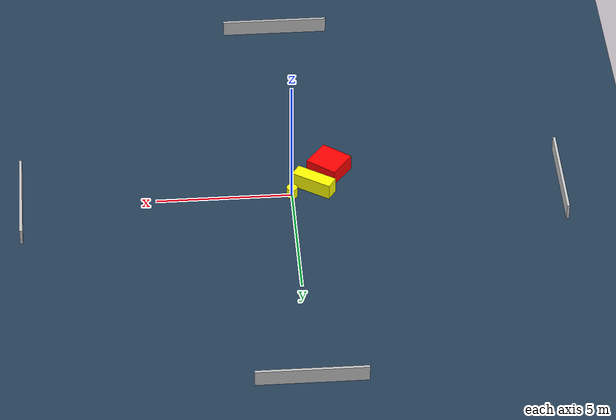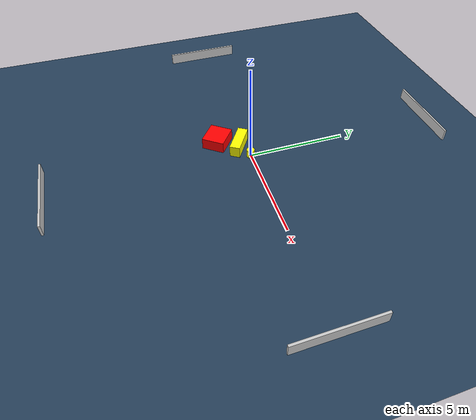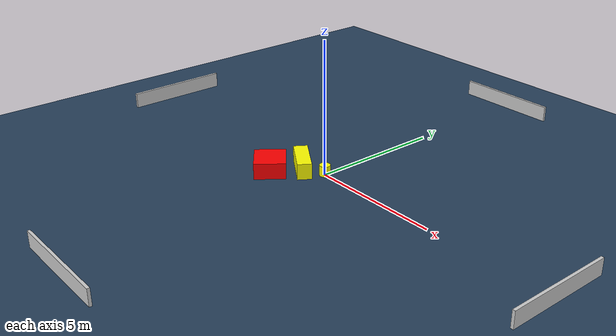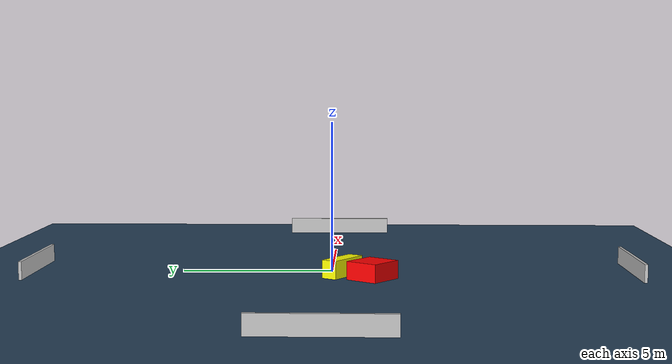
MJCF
<?xml version="1.0" ?>
<mujoco model="generated_environment">
  <option timestep="0.01" integrator="RK4" cone="elliptic"/>
  <default>
    <geom density="1"/>
  </default>
  <asset>
    <texture builtin="gradient" height="3072" name="skybox" rgb1="0.3 0.5 0.7" rgb2="0 0 0" type="skybox" width="512"/>
    <texture builtin="checker" height="300" name="groundplane" rgb1="0.2 0.3 0.4" rgb2="0.1 0.2 0.3" type="2d" width="300"/>
    <material name="groundplane" reflectance="0.2" texrepeat="5 5" texture="groundplane"/>
  </asset>
  <worldbody>
    <light dir="0 0 -1" directional="true" pos="0 0 1.5"/>
    <geom condim="3" friction="0.5 0.005 0.001" material="groundplane" name="floor" pos="0 0 0" size="0 0 0.05" type="plane"/>
    <body name="walls">
      <geom name="wall_1" condim="4" pos="-10.0 0.0 0.3" rgba="0.800000011920929 0.800000011920929 0.800000011920929 1.0" size="0.05 2.0 0.3" type="box"/>
      <geom name="wall_2" condim="4" pos="10.0 0.0 0.3" rgba="0.800000011920929 0.800000011920929 0.800000011920929 1.0" size="0.05 2.0 0.3" type="box"/>
      <geom name="wall_3" condim="4" pos="0.0 -10.0 0.3" rgba="0.800000011920929 0.800000011920929 0.800000011920929 1.0" size="2.0 0.05 0.3" type="box"/>
      <geom name="wall_4" condim="4" pos="0.0 10.0 0.3" rgba="0.800000011920929 0.800000011920929 0.800000011920929 1.0" size="2.0 0.05 0.3" type="box"/>
    </body>
    <body name="robot">
      <joint name="joint_x" type="slide" pos="0 0 0" axis="1 0 0"/>
      <joint name="joint_y" type="slide" pos="0 0 0" axis="0 1 0"/>
      <geom name="robot" type="cylinder" pos="0.0 0.0 0.2" size="0.2 0.2 0.0" mass="5.0" friction="1.0 0.005 0.0001" condim="4" rgba="1.0 1.0 0.0 1.0"/>
    </body>
    <body name="obstacle_1_movable">
      <geom name="obstacle_1_movable" condim="4" pos="-0.8363789855601257 -0.35226175261845316 0.3" euler="0 0 326.9839469856819" friction="0.0 0.005 0.001" rgba="1.0 1.0 0.0 1.0" size="0.7810590148077863 0.2608535838986427 0.3" type="box" mass="0.1"/>
      <joint type="free"/>
    </body>
    <body name="obstacle_2_static">
      <geom name="obstacle_2_static" condim="4" pos="-1.4698552434392285 -1.3313086454391563 0.3" euler="0 0 52.49658476144293" friction="0.0 0.005 0.001" rgba="1.0 0.0 0.0 1.0" size="0.5752796745213586 0.6139108537853815 0.3" type="box"/>
    </body>
  </worldbody>
  <actuator>
    <motor name="actuator_x" joint="joint_x" gear="1" ctrlrange="-1 1"/>
    <motor name="actuator_y" joint="joint_y" gear="1" ctrlrange="-1 1"/>
  </actuator>
</mujoco>
